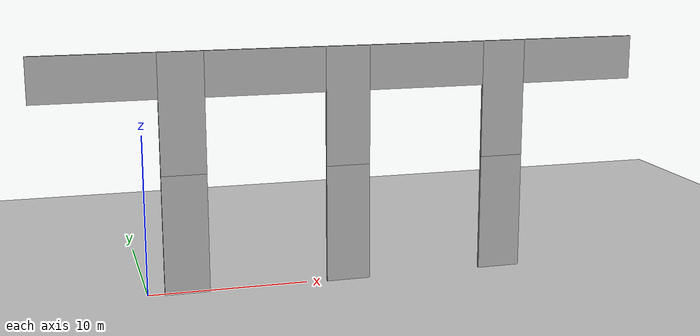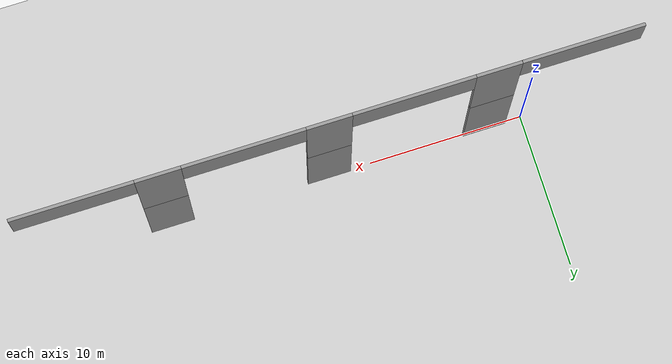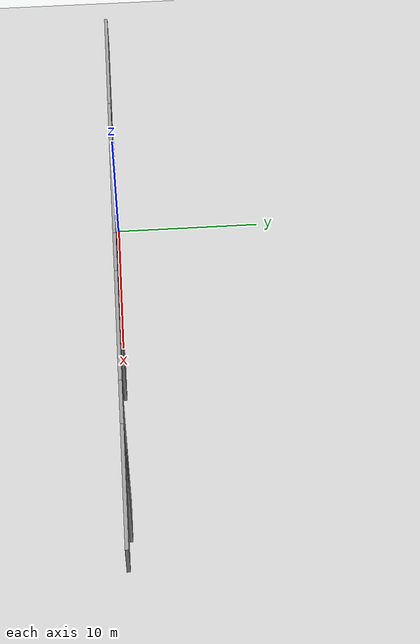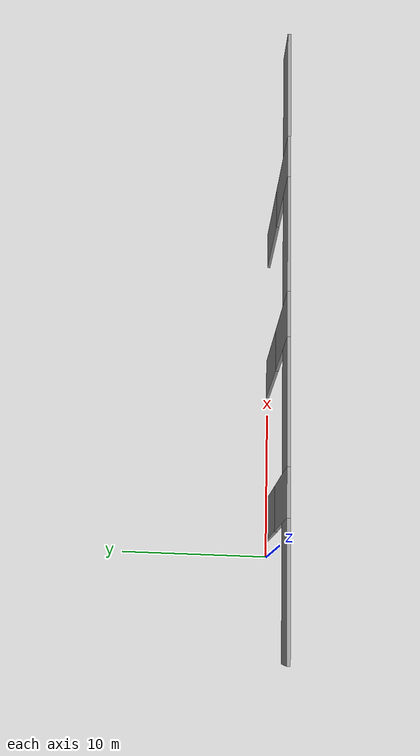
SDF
<sdf version="1.6">
 <world name="default">
  <light name="sun" type="directional">
   <pose>0 0 10 0 -0 0</pose>
   <diffuse>0.8 0.8 0.8 1</diffuse>
   <specular>0.1 0.1 0.1 1</specular>
   <attenuation>
    <range>1000</range>
    <constant>0.9</constant>
    <linear>0.01</linear>
    <quadratic>0.001</quadratic>
   </attenuation>
   <direction>-0.5 0.5 -1</direction>
  </light>
  <model name="ground_plane">
   <static>1</static>
   <link name="link">
    <collision name="collision">
     <geometry><plane><normal>0 0 1</normal><size>100 100</size></plane></geometry>
     <surface><friction><ode><mu>100</mu><mu2>50</mu2></ode></friction></surface>
    </collision>
    <visual name="visual">
     <cast_shadows>0</cast_shadows>
     <geometry><plane><normal>0 0 1</normal><size>100 100</size></plane></geometry>
     <material>
      <script><uri>file://media/materials/scripts/gazebo.material</uri><name>Gazebo/Grey</name></script>
     </material>
    </visual>
   </link>
  </model>
  <gravity>0 0 -9.8</gravity>
  <magnetic_field>6e-06 2.3e-05 -4.2e-05</magnetic_field>
  <atmosphere type="adiabatic"/>
  <physics name="default_physics" default="0" type="ode">
   <max_step_size>0.001</max_step_size>
   <real_time_factor>1</real_time_factor>
   <real_time_update_rate>1000</real_time_update_rate>
  </physics>
  <scene><ambient>0.4 0.4 0.4 1</ambient><background>0.7 0.7 0.7 1</background><shadows>1</shadows></scene>
  <spherical_coordinates>
   <surface_model>EARTH_WGS84</surface_model>
   <latitude_deg>0</latitude_deg>
   <longitude_deg>0</longitude_deg>
   <elevation>0</elevation>
   <heading_deg>0</heading_deg>
  </spherical_coordinates>
  <model name="grey_wall">
   <static>1</static>
   <link name="link">
    <pose>0 0 1.4 0 -0 0</pose>
    <collision name="collision"><geometry><box><size>7.5 0.2 2.8</size></box></geometry></collision>
    <visual name="visual">
     <cast_shadows>0</cast_shadows>
     <geometry><box><size>7.5 0.2 2.8</size></box></geometry>
     <material>
      <script>
       <uri>model://grey_wall/materials/scripts</uri>
       <uri>model://grey_wall/materials/textures</uri>
       <name>vrc/grey_wall</name>
      </script>
     </material>
    </visual>
   </link>
   <pose>3.83274 0.003377 3.71969 3.14159 -1.56942 3.14159</pose>
  </model>
  <model name="grey_wall_clone">
   <static>1</static>
   <link name="link">
    <pose>0 0 1.4 0 -0 0</pose>
    <collision name="collision"><geometry><box><size>7.5 0.2 2.8</size></box></geometry></collision>
    <visual name="visual">
     <cast_shadows>0</cast_shadows>
     <geometry><box><size>7.5 0.2 2.8</size></box></geometry>
     <material>
      <script>
       <uri>model://grey_wall/materials/scripts</uri>
       <uri>model://grey_wall/materials/textures</uri>
       <name>vrc/grey_wall</name>
      </script>
     </material>
    </visual>
   </link>
   <pose>3.82394 0.003377 11.2197 3.14159 -1.56942 3.14159</pose>
  </model>
  <model name="grey_wall_0">
   <static>1</static>
   <link name="link">
    <pose>0 0 1.4 0 -0 0</pose>
    <collision name="collision"><geometry><box><size>7.5 0.2 2.8</size></box></geometry></collision>
    <visual name="visual">
     <cast_shadows>0</cast_shadows>
     <geometry><box><size>7.5 0.2 2.8</size></box></geometry>
     <material>
      <script>
       <uri>model://grey_wall/materials/scripts</uri>
       <uri>model://grey_wall/materials/textures</uri>
       <name>vrc/grey_wall</name>
      </script>
     </material>
    </visual>
   </link>
   <pose>-2.72736 0.003412 12.164 0 -0.001376 -5e-06</pose>
  </model>
  <model name="grey_wall_0_clone">
   <static>1</static>
   <link name="link">
    <pose>0 0 1.4 0 -0 0</pose>
    <collision name="collision"><geometry><box><size>7.5 0.2 2.8</size></box></geometry></collision>
    <visual name="visual">
     <cast_shadows>0</cast_shadows>
     <geometry><box><size>7.5 0.2 2.8</size></box></geometry>
     <material>
      <script>
       <uri>model://grey_wall/materials/scripts</uri>
       <uri>model://grey_wall/materials/textures</uri>
       <name>vrc/grey_wall</name>
      </script>
     </material>
    </visual>
   </link>
   <pose>7.57263 0.003358 12.1762 0 -0.001376 -5e-06</pose>
  </model>
  <model name="grey_wall_clone_clone">
   <static>1</static>
   <link name="link">
    <pose>0 0 1.4 0 -0 0</pose>
    <collision name="collision"><geometry><box><size>7.5 0.2 2.8</size></box></geometry></collision>
    <visual name="visual">
     <cast_shadows>0</cast_shadows>
     <geometry><box><size>7.5 0.2 2.8</size></box></geometry>
     <material>
      <script>
       <uri>model://grey_wall/materials/scripts</uri>
       <uri>model://grey_wall/materials/textures</uri>
       <name>vrc/grey_wall</name>
      </script>
     </material>
    </visual>
   </link>
   <pose>14.121 0.002839 11.2327 3.14159 -1.56942 3.14159</pose>
  </model>
  <model name="grey_wall_clone_clone_clone">
   <static>1</static>
   <link name="link">
    <pose>0 0 1.4 0 -0 0</pose>
    <collision name="collision"><geometry><box><size>7.5 0.2 2.8</size></box></geometry></collision>
    <visual name="visual">
     <cast_shadows>0</cast_shadows>
     <geometry><box><size>7.5 0.2 2.8</size></box></geometry>
     <material>
      <script>
       <uri>model://grey_wall/materials/scripts</uri>
       <uri>model://grey_wall/materials/textures</uri>
       <name>vrc/grey_wall</name>
      </script>
     </material>
    </visual>
   </link>
   <pose>14.1298 0.002839 3.73274 3.14159 -1.56942 3.14159</pose>
  </model>
  <model name="grey_wall_0_clone_clone">
   <static>1</static>
   <link name="link">
    <pose>0 0 1.4 0 -0 0</pose>
    <collision name="collision"><geometry><box><size>7.5 0.2 2.8</size></box></geometry></collision>
    <visual name="visual">
     <cast_shadows>0</cast_shadows>
     <geometry><box><size>7.5 0.2 2.8</size></box></geometry>
     <material>
      <script>
       <uri>model://grey_wall/materials/scripts</uri>
       <uri>model://grey_wall/materials/textures</uri>
       <name>vrc/grey_wall</name>
      </script>
     </material>
    </visual>
   </link>
   <pose>17.8697 0.002802 12.1876 0 -0.001376 -1e-05</pose>
  </model>
  <model name="grey_wall_clone_clone_clone_0">
   <static>1</static>
   <link name="link">
    <pose>0 0 1.4 0 -0 0</pose>
    <collision name="collision"><geometry><box><size>7.5 0.2 2.8</size></box></geometry></collision>
    <visual name="visual">
     <cast_shadows>0</cast_shadows>
     <geometry><box><size>7.5 0.2 2.8</size></box></geometry>
     <material>
      <script>
       <uri>model://grey_wall/materials/scripts</uri>
       <uri>model://grey_wall/materials/textures</uri>
       <name>vrc/grey_wall</name>
      </script>
     </material>
    </visual>
   </link>
   <pose>24.421 0.00275 11.2485 3.14159 -1.56942 3.14159</pose>
  </model>
  <model name="grey_wall_clone_clone_clone_clone">
   <static>1</static>
   <link name="link">
    <pose>0 0 1.4 0 -0 0</pose>
    <collision name="collision"><geometry><box><size>7.5 0.2 2.8</size></box></geometry></collision>
    <visual name="visual">
     <cast_shadows>0</cast_shadows>
     <geometry><box><size>7.5 0.2 2.8</size></box></geometry>
     <material>
      <script>
       <uri>model://grey_wall/materials/scripts</uri>
       <uri>model://grey_wall/materials/textures</uri>
       <name>vrc/grey_wall</name>
      </script>
     </material>
    </visual>
   </link>
   <pose>24.431 0.00275 3.74846 3.14159 -1.56942 3.14159</pose>
  </model>
  <model name="grey_wall_0_clone_0">
   <static>1</static>
   <link name="link">
    <pose>0 0 1.4 0 -0 0</pose>
    <collision name="collision"><geometry><box><size>7.5 0.2 2.8</size></box></geometry></collision>
    <visual name="visual">
     <cast_shadows>0</cast_shadows>
     <geometry><box><size>7.5 0.2 2.8</size></box></geometry>
     <material>
      <script>
       <uri>model://grey_wall/materials/scripts</uri>
       <uri>model://grey_wall/materials/textures</uri>
       <name>vrc/grey_wall</name>
      </script>
     </material>
    </visual>
   </link>
   <pose>28.1697 0.002696 12.2077 0 -0.001376 -1.5e-05</pose>
  </model>
 </world>
</sdf>
